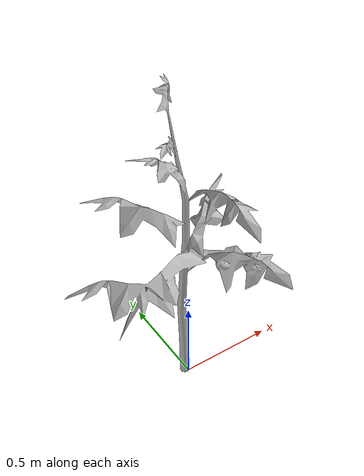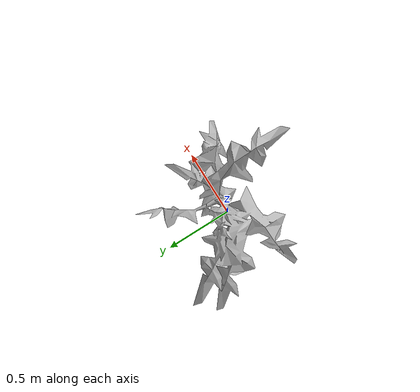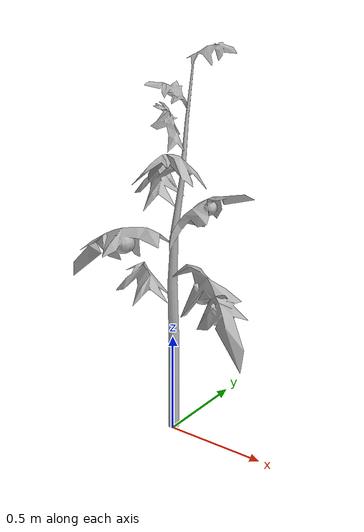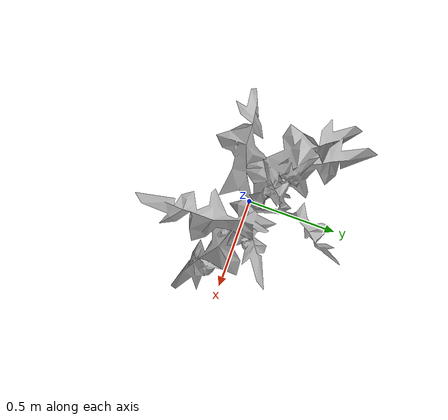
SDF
<?xml version="1.0" ?>
<sdf version="1.6">
  <model name="tomato_plant_medium">
    <static>true</static>
    <link name="link">
      <collision name="collision">
        <pose>0 0 0 1.5708 -0 0</pose>
        <geometry>
          <mesh>
            <scale>0.5 0.5 0.5</scale>
            <uri>model://stick/meshes/stick.dae</uri>
          </mesh>
        </geometry>
      </collision>
      <visual name="visual">
        <pose>0 0 0 0 -0 0</pose>
        <geometry>
          <mesh>
            <scale>0.000005 0.000005 0.0000060</scale>
            <uri>model://tomato_plant_medium/meshes/tomato-plant.dae</uri>
          </mesh>
        </geometry>
      </visual>
    </link>
  </model>
</sdf>
